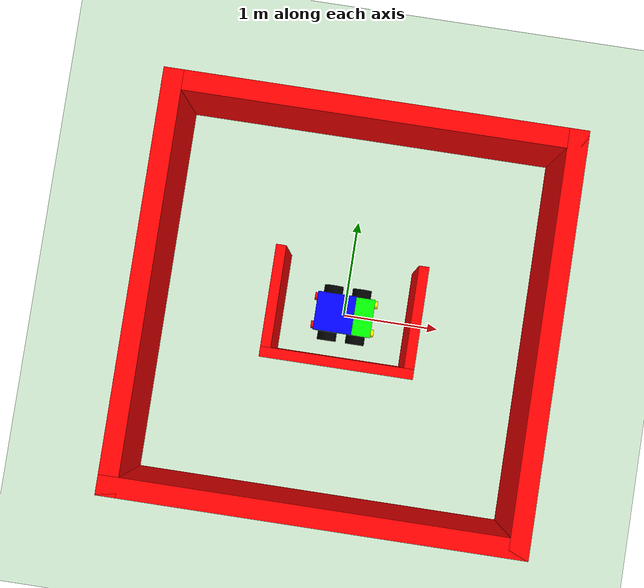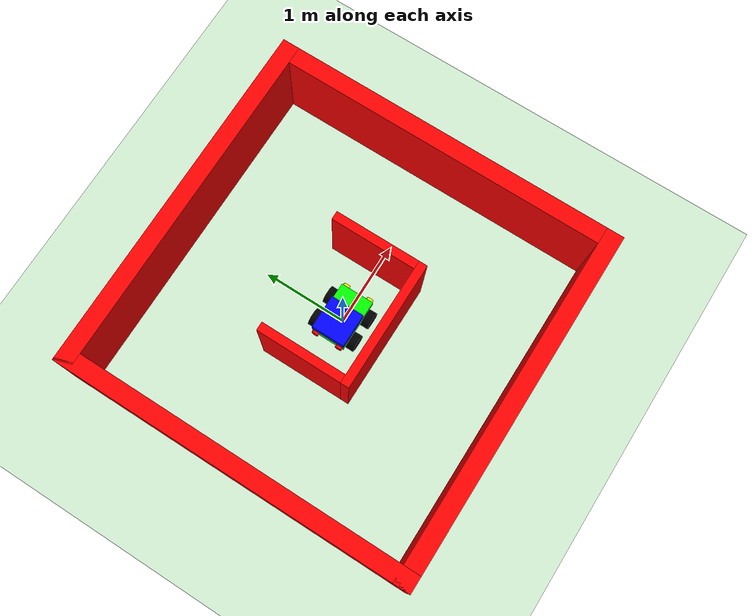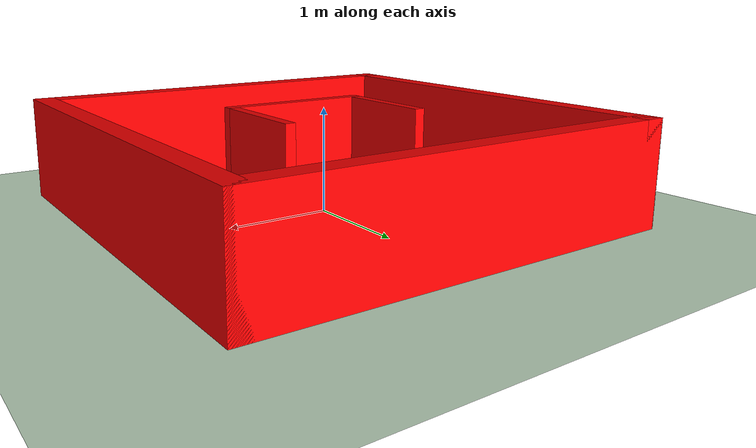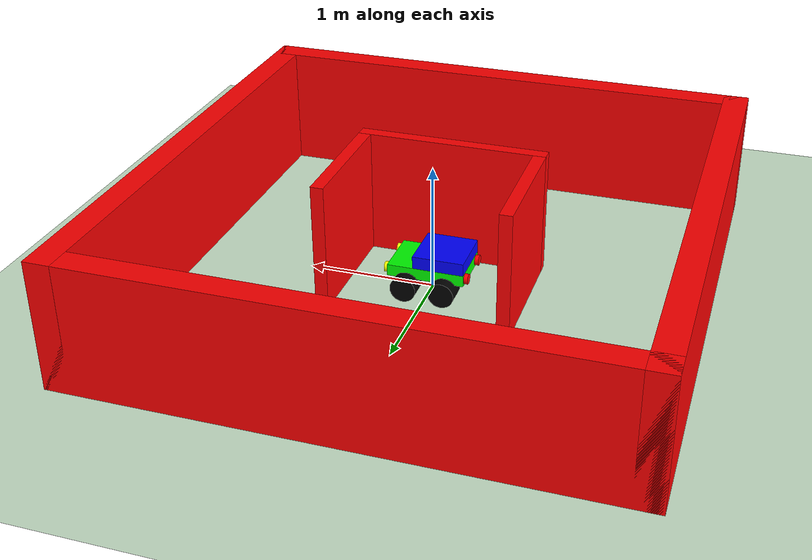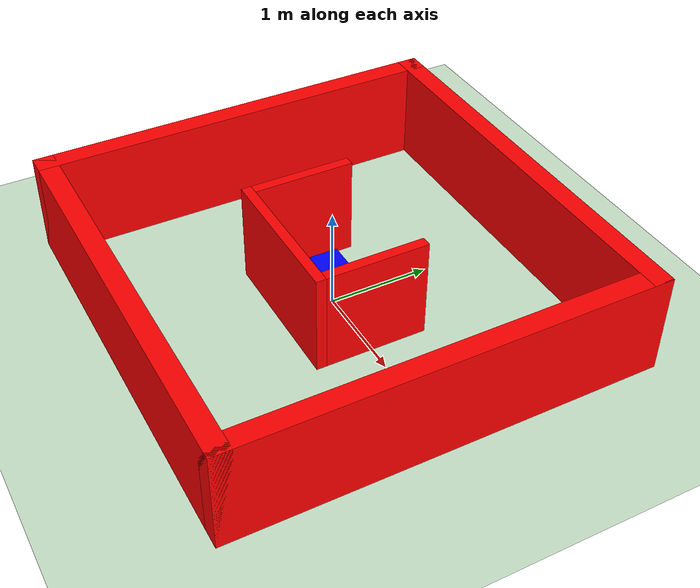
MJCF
<mujoco model='wheeled'>
  <compiler inertiafromgeom='true' coordinate='local' angle='radian' settotalmass='14' />
  <default>
    <geom contype='1' conaffinity='0' condim='3' friction='.4 .4 .4' rgba='0.8 0.6 .4 1' solimp='0.0 0.8 0.01' solref='0.02 1' />
  </default>
  <size nstack='300000' nuser_geom='1' />
  <option timestep='0.01' gravity='0 0 -9.81' />
  <asset>
    <texture type="skybox" builtin="gradient" width="100" height="100" rgb1="1 1 1" rgb2="0 0 0" />
    <texture name="texgeom" type="cube" builtin="flat" mark="cross" width="127" height="1278" rgb1="0.8 0.6 0.4" rgb2="0.8 0.6 0.4" markrgb="1 1 1" random="0.01" />
      <texture name="texplane" type="2d" builtin="flat" rgb1="1.0 1.0 1.0" rgb2="1.0 1.0 1.0" width="100" height="100" />
    <material name='MatPlane' texture="texplane" shininess="1" texrepeat="60 60" specular="1"  reflectance="0.5" />
    <material name='geom' texture="texgeom" texuniform="true" />
  </asset>
  <worldbody>
    <light directional="true" cutoff="100" exponent="1" diffuse="1 1 1" specular=".1 .1 .1" pos="0 0 1.3" dir="-0 0 -1.3" />
    <geom name='floor' material="MatPlane" pos='0 0 0' size='40 40 40' type='plane' conaffinity='1' rgba='0.8 0.9 0.8 1' condim='3' />
        <geom name='left_wall' pos='-2.0 0 0.5' size='0.1 2.1 0.5' type='box' conaffinity='1' rgba='1 0 0 1' condim='1' contype='1' />
            <geom name='right_wall' pos='2.0 0 0.5' size='0.1 2.1 0.5' type='box' conaffinity='1' rgba='1 0 0 1' condim='1' contype='1' />
                <geom name='front_wall' pos='0 2.0 0.5' size='2.1 0.1 0.5' type='box' conaffinity='1' rgba='1 0 0 1' condim='1' contype='1' />
                    <geom name='back_wall' pos='0 -2.0 0.5' size='2.1 0.1 0.5' type='box' conaffinity='1' rgba='1 0 0 1' condim='1' contype='1' />

      <geom name='uwall_bottom' pos='0 -0.5 0.5' size='0.75 0.05 0.5' type='box' conaffinity='1' rgba='1 0 0 1' condim='1' contype='1' />
      <geom name='uwall_right' pos='0.70 0.05 0.5' size='0.05 0.5 0.5' type='box' conaffinity='1' rgba='1 0 0 1' condim='1' contype='1' />
      <geom name='uwall_left' pos='-0.70 0.05 0.5' size='0.05 0.5 0.5' type='box' conaffinity='1' rgba='1 0 0 1' condim='1' contype='1' />

    <body name='car' pos='0 0 -0.4'>

        <geom name='body_front' type='box' pos ='0 0 .6' rgba="0 1 0 1" size='0.30 0.2 0.046' />
      <geom name='body_back' type='box' pos ='-0.10 0 0.696' rgba="0 0 1 1" size='0.20 0.2 0.05' />

        <geom name='light1' type='cylinder' axisangle="0 1 0 1.57" pos ='-0.30 0.15 0.6' rgba="1 0 0 1" size='0.04 0.03' />
        <geom name='light2' type='cylinder' axisangle="0 1 0 1.57" pos ='-0.30 -0.15 0.6' rgba="1 0 0 1" size='0.04 0.03' />

        <geom name='light3' type='cylinder' axisangle="0 1 0 1.57" pos ='0.30 0.15 0.6' rgba="1 1 0 1" size='0.04 0.03' />
        <geom name='light4' type='cylinder' axisangle="0 1 0 1.57" pos ='0.30 -0.15 0.6' rgba="1 1 0 1" size='0.04 0.03' />

      <joint name="xmove" type="slide" limited="false" pos="0 0 0" axis="1 0 0" margin="0.01" armature="0" damping="0" />
      <joint name="ymove" type="slide" limited="false" pos="0 0 0" axis="0 1 0" margin="0.01" armature="0" damping="0" />
      <joint name="zmove" type="slide" limited="true" range="-1 0.03" pos="0 0 0" axis="0 0 1" margin="0.01" armature="0" damping="0" />
      <joint name="zrotate" type="hinge" limited="false" pos="0 0 0" axis="0 0 1" margin="0.01" armature="0" damping="0" />

        <body name='wheelbody1' pos='0.15 -0.20 0'>
        <geom name='wheel1' type='cylinder' axisangle="1 0 0 1.57" pos ='0 0 0.5' rgba="0 0 0 1" size='0.1 0.092' />
        <joint name="rotate_wheels1" type="hinge" limited="false" pos="0 0 0.5" axis="0 1 0" margin="0.01" armature="0" damping="0" />
      </body>

      <body name='wheelbody2' pos='0.15 0.20 0'>
        <geom name='wheel2' type='cylinder' axisangle="1 0 0 1.57" pos ='0 0 0.5' rgba="0 0 0 1" size='0.1 0.092' />
        <joint name="rotate_wheels2" type="hinge" limited="false" pos="0 0 0.5" axis="0 1 0" margin="0.01" armature="0" damping="0" />
      </body>

        <body name='wheelbody3' pos='-0.15 -0.20 0'>
        <geom name='wheel3' type='cylinder' axisangle="1 0 0 1.57" pos ='0 0 0.5' rgba="0 0 0 1" size='0.1 0.092' />
      </body>

        <body name='wheelbody4' pos='-0.15 0.20 0'>
        <geom name='wheel4' type='cylinder' axisangle="1 0 0 1.57" pos ='0 0 0.5' rgba="0 0 0 1" size='0.1 0.092' />
      </body>

    </body>

  </worldbody>
  <actuator>
    <velocity name='rotate_wheels1' ctrlrange='-1000 1000' joint='rotate_wheels1'/>
    <velocity name='rotate_wheels2' ctrlrange='-1000 1000' joint='rotate_wheels2'/>
  </actuator>
</mujoco>
